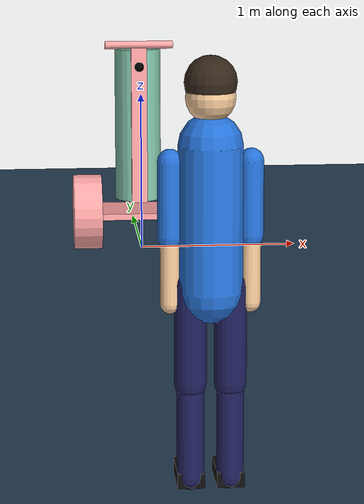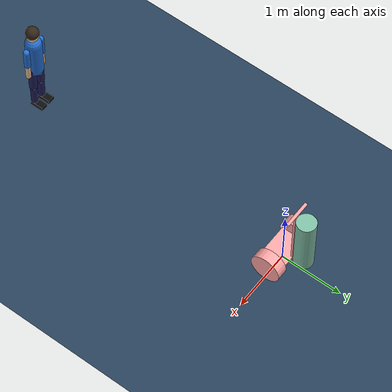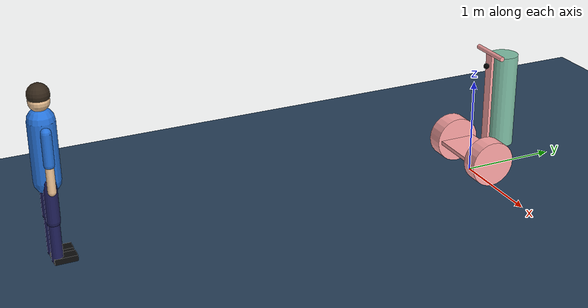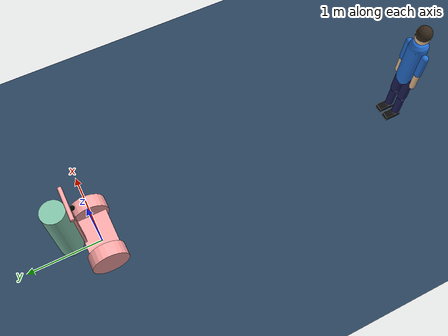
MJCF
<mujoco model="scooter scene">
  <compiler angle="radian"/>
  <option timestep="0.000025"/>

  <include file="balance_ball_buy_model_liu_front_follow_lqr.xml"/> # 买的车模型(liu)，球包在前面，lqr平衡且跟踪人

  <statistic center="0 0 0.8" extent="80"/>
  <visual>
    <headlight diffuse="0.85 0.85 0.85" ambient="0.65 0.65 0.65" specular="0.1 0.1 0.1"/>
    <rgba haze="0.65 0.75 0.85 1"/>
    <global azimuth="120" elevation="-15" fovy="50"/>
  </visual>

  <asset>
    <!-- 天空盒：golf scene 的灰色渐变 -->
    <texture type="skybox" builtin="gradient" rgb1="0.75 0.85 1.0" rgb2="0.35 0.55 0.8" width="512" height="3072"/>
    <!-- 地面纹理：golf scene 的深色棋盘格 -->
    <texture type="2d" name="groundplane" builtin="checker" mark="edge"
             rgb1="0.2 0.3 0.4" rgb2="0.1 0.2 0.3" markrgb="0.8 0.8 0.8"
             width="300" height="300"/>
    <material name="groundplane" texture="groundplane" texuniform="true" texrepeat="5 5" reflectance="0.2"/>
  </asset>

  <worldbody>
    <light pos="0 0 20" dir="0 0 -1" directional="true"
           diffuse="0.9 0.9 0.9" ambient="0.45 0.45 0.45"/>
    <light pos="0 -20 12" dir="0 1 -0.5" directional="true"
           diffuse="0.45 0.45 0.45" ambient="0.2 0.2 0.2"/>
    <!-- 地面几何体 -->
    <geom name="ground" size="0 0 0.05" type="plane" friction="1.0 1.0 0.1"
          pos="0 0 0" material="groundplane" contype="1" conaffinity="2"/>
  </worldbody>
</mujoco>

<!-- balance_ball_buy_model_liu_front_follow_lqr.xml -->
<mujoco model="golf_balance_tracking">

    <compiler angle="radian"/>
    <size njmax="500" nconmax="100"/>
    <option gravity="0 0 -9.81" viscosity="0.002"/>

    <!-- ============ 材质 ============ -->
    <asset>
        <texture type="2d" name="wheel_texture" builtin="checker" mark="edge"
                 rgb1="1 1 1" rgb2="1 0.3 0.3"
                 markrgb="0.3 0.3 0.3" width="1024" height="1024"/>
        <material name="wheel_mat" texture="wheel_texture" texuniform="true" texrepeat="5 5"/>

        <texture type="2d" name="body_texture" builtin="gradient" rgb1="1 1 1"
                 rgb2="1 0.3 0.3" width="512" height="512"/>
        <material name="body_mat" texture="body_texture" texrepeat="4 2" shininess="0.3"/>

        <texture type="2d" name="bag_texture" builtin="gradient" rgb1="1 1 1"
                 rgb2="0 0.5 0.3" width="256" height="256"/>
        <material name="bag_mat" texture="bag_texture" texrepeat="4 2" shininess="0.3"/>

        <!-- 地面草地纹理 -->
        <texture type="2d" name="ground_texture" builtin="checker"
                 rgb1="0.22 0.45 0.22" rgb2="0.28 0.52 0.28"
                 width="512" height="512"/>
        <material name="ground_mat" texture="ground_texture" texrepeat="40 40"
                  reflectance="0.1" shininess="0.0"/>
    </asset>

    <worldbody>
        <!-- ============ 高尔夫球车（双轮差速平衡车） ============ -->
        <body name="segway" pos="0 0 0.24">
            <joint name="segway_free" type="free" damping="0.05"/>

            <!-- 底盘 -->
            <body name="chassis" pos="0 0 0">
                <inertial pos="0.0 -0.05 0.0" quat="0.707107 0 0 0.707107"
                          mass="37.8" diaginertia="0.75 1.35 1.60"/>
                <geom type="box" size="0.35 0.20 0.02" material="body_mat"/>
            </body>

            <!-- 车把 -->
            <body name="handlebar" pos="0 0 0.02">
                <!-- 立柱/把手几何中心约在 y=0.18,z=0.52；惯性中心不能放在轮轴 -->
                <inertial pos="0.0 0.18 0.52" quat="0.707107 0 0 0.707107"
                          mass="5.0" diaginertia="0.5 0.45 0.05"/>
                <geom type="box" size="0.051 0.016 0.52" pos="0 0.18 0.52" material="body_mat"/>
                <!-- 把手 -->
                <geom type="cylinder" size="0.025 0.22" pos="0 0.18 1.04"
                      quat="0.707107 0 0.707107 0" material="body_mat"/>
                <!-- 摄像头装在车把的 -Y（人）侧，朝 -Y 跟踪 -->
                <geom type="sphere" size="0.03" pos="0 0.14 0.9" rgba="0 0 0 1"/>
                <camera name="person_tracking_camera" pos="0 0.14 0.9"
                        xyaxes="-1 0 0 0 0 1" fovy="110"/>

                <!-- 沿 -Y 到 +Y 的站位：人/摄像头 - 车把 - 球包 -->
                <body name="golf_bag" pos="0 0.35 0.5">
                    <inertial pos="0 0 0" mass="10.0"
                              diaginertia="1.10 1.10 0.10"/>
                    <geom type="cylinder" size="0.15 0.5" material="bag_mat"/>
                </body>
            </body>

            <!-- 左轮 -->
            <body name="l_wheel" pos="-0.35 0 0">
                <inertial pos="0 0 0" quat="0.5 0.5 -0.5 0.5"
                          mass="4.5" diaginertia="0.085 0.043 0.043"/>
                <joint name="torso_l_wheel" type="hinge" pos="0 0 0" axis="-1 0 0" damping="0.02"/>
                <geom type="cylinder" size="0.24 0.09" quat="0.707107 0 0.707107 0"
                      material="wheel_mat" contype="2" conaffinity="1" friction="1 0.005 0.0001"/>
            </body>

            <!-- 右轮 -->
            <body name="r_wheel" pos="0.35 0 0">
                <inertial pos="0 0 0" quat="0.5 0.5 -0.5 0.5"
                          mass="4.5" diaginertia="0.085 0.043 0.043"/>
                <joint name="torso_r_wheel" type="hinge" pos="0 0 0" axis="-1 0 0" damping="0.02"/>
                <geom type="cylinder" size="0.24 0.09" quat="0.707107 0 0.707107 0"
                      material="wheel_mat" contype="2" conaffinity="1" friction="1 0.005 0.0001"/>
            </body>
        </body>

        <!-- ============ 带肩、肘、髋、膝关节的人体 ============ -->
        <body name="person" mocap="true" pos="0 -4.5 0">
            <geom type="capsule" fromto="0 0 0.82 0 0 1.40" size="0.13"
                  rgba="0.15 0.45 0.85 1" contype="0" conaffinity="0"/>
            <geom type="capsule" fromto="0 0 1.40 0 0 1.50" size="0.05"
                  rgba="0.95 0.78 0.6 1" contype="0" conaffinity="0"/>
            <geom type="sphere" size="0.10" pos="0 0 1.59"
                  rgba="0.95 0.78 0.6 1" contype="0" conaffinity="0"/>
            <geom type="sphere" size="0.105" pos="0 0 1.65"
                  rgba="0.2 0.15 0.1 1" contype="0" conaffinity="0"/>

            <body name="human_l_upper_arm" pos="0.16 0 1.34">
                <joint name="human_l_shoulder" type="hinge" axis="1 0 0"
                       limited="true" range="-1.2 1.2" damping="1.0"/>
                <geom type="capsule" fromto="0 0 0 0 0 -0.30" size="0.05"
                      rgba="0.15 0.45 0.85 1" contype="0" conaffinity="0"/>
                <body name="human_l_forearm" pos="0 0 -0.30">
                    <joint name="human_l_elbow" type="hinge" axis="1 0 0"
                           limited="true" range="0 1.4" damping="0.8"/>
                    <geom type="capsule" fromto="0 0 0 0 0 -0.27" size="0.04"
                          rgba="0.95 0.78 0.6 1" contype="0" conaffinity="0"/>
                </body>
            </body>
            <body name="human_r_upper_arm" pos="-0.16 0 1.34">
                <joint name="human_r_shoulder" type="hinge" axis="1 0 0"
                       limited="true" range="-1.2 1.2" damping="1.0"/>
                <geom type="capsule" fromto="0 0 0 0 0 -0.30" size="0.05"
                      rgba="0.15 0.45 0.85 1" contype="0" conaffinity="0"/>
                <body name="human_r_forearm" pos="0 0 -0.30">
                    <joint name="human_r_elbow" type="hinge" axis="1 0 0"
                           limited="true" range="0 1.4" damping="0.8"/>
                    <geom type="capsule" fromto="0 0 0 0 0 -0.27" size="0.04"
                          rgba="0.95 0.78 0.6 1" contype="0" conaffinity="0"/>
                </body>
            </body>
            <body name="human_l_thigh" pos="0.08 0 0.84">
                <joint name="human_l_hip" type="hinge" axis="1 0 0"
                       limited="true" range="-1.1 1.1" damping="1.5"/>
                <geom type="capsule" fromto="0 0 0 0 0 -0.40" size="0.065"
                      rgba="0.12 0.12 0.35 1" contype="0" conaffinity="0"/>
                <body name="human_l_shin" pos="0 0 -0.40">
                    <geom type="capsule" fromto="0 0 0 0 0 -0.39" size="0.055"
                          rgba="0.12 0.12 0.35 1" contype="0" conaffinity="0"/>
                    <geom type="box" size="0.055 0.11 0.03" pos="0 0.07 -0.40"
                          rgba="0.05 0.05 0.05 1" contype="0" conaffinity="0"/>
                </body>
            </body>
            <body name="human_r_thigh" pos="-0.08 0 0.84">
                <joint name="human_r_hip" type="hinge" axis="1 0 0"
                       limited="true" range="-1.1 1.1" damping="1.5"/>
                <geom type="capsule" fromto="0 0 0 0 0 -0.40" size="0.065"
                      rgba="0.12 0.12 0.35 1" contype="0" conaffinity="0"/>
                <body name="human_r_shin" pos="0 0 -0.40">
                    <geom type="capsule" fromto="0 0 0 0 0 -0.39" size="0.055"
                          rgba="0.12 0.12 0.35 1" contype="0" conaffinity="0"/>
                    <geom type="box" size="0.055 0.11 0.03" pos="0 0.07 -0.40"
                          rgba="0.05 0.05 0.05 1" contype="0" conaffinity="0"/>
                </body>
            </body>
        </body>

    </worldbody>

    <actuator>
        <motor name="motor_l_wheel" joint="torso_l_wheel" gear="1" ctrllimited="true" ctrlrange="-80 80"/>
        <motor name="motor_r_wheel" joint="torso_r_wheel" gear="1" ctrllimited="true" ctrlrange="-80 80"/>
        <position name="human_l_shoulder_act" joint="human_l_shoulder" kp="80"
                  ctrllimited="true" ctrlrange="-1.2 1.2"/>
        <position name="human_r_shoulder_act" joint="human_r_shoulder" kp="80"
                  ctrllimited="true" ctrlrange="-1.2 1.2"/>
        <position name="human_l_elbow_act" joint="human_l_elbow" kp="60"
                  ctrllimited="true" ctrlrange="0 1.4"/>
        <position name="human_r_elbow_act" joint="human_r_elbow" kp="60"
                  ctrllimited="true" ctrlrange="0 1.4"/>
        <position name="human_l_hip_act" joint="human_l_hip" kp="120"
                  ctrllimited="true" ctrlrange="-1.1 1.1"/>
        <position name="human_r_hip_act" joint="human_r_hip" kp="120"
                  ctrllimited="true" ctrlrange="-1.1 1.1"/>
    </actuator>

</mujoco>
